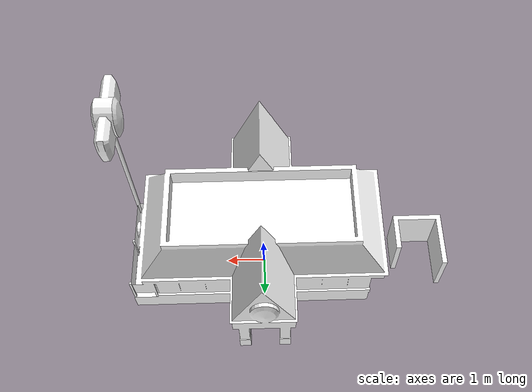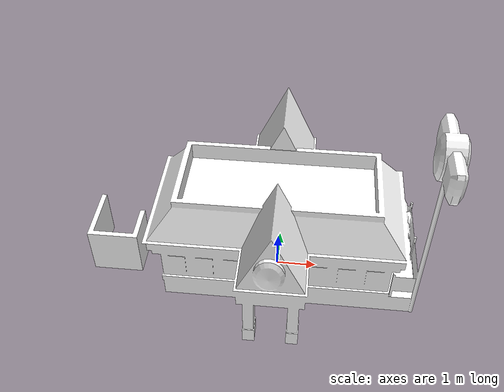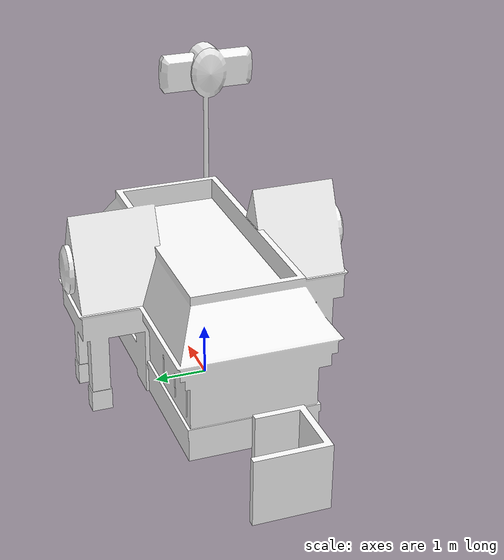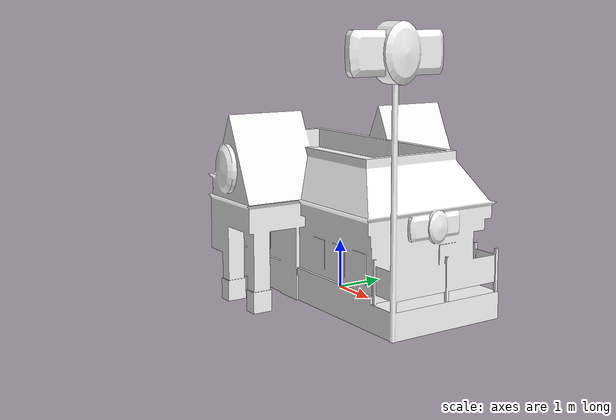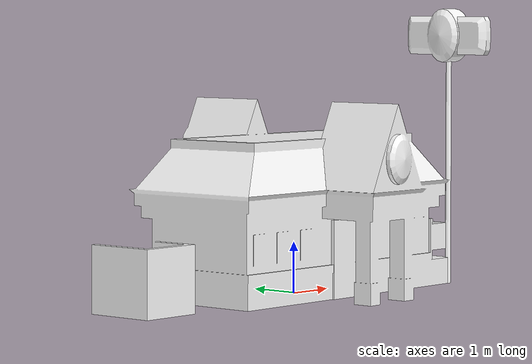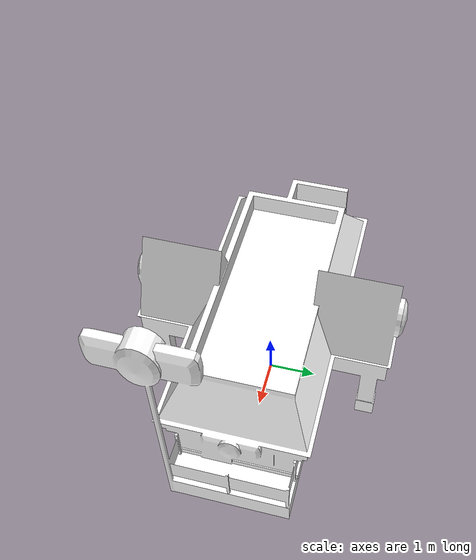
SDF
<?xml version="1.0"?>
<sdf version="1.4">
  <model name="Fast Food">
    <static>true</static>
    <link name="link">
      <pose>0 0 1.57965648 0 0 0</pose>
      <collision name="collision">
        <geometry>
          <mesh>
            <uri>model://fast_food/meshes/fast_food.dae</uri>
          </mesh>
        </geometry>
      </collision>
      <visual name="visual">
        <geometry>
          <mesh>
            <uri>model://fast_food/meshes/fast_food.dae</uri>
          </mesh>
        </geometry>
        <material>
          <script>
            <uri>model://fast_food/materials/scripts</uri>
            <uri>model://fast_food/materials/textures</uri>
            <name>FastFood/Diffuse</name>
          </script>

          <shader type="normal_map_object_space">
            <normal_map>FastFood_Normal.png</normal_map>
          </shader>
        </material>
      </visual>
    </link>
  </model>
</sdf>
